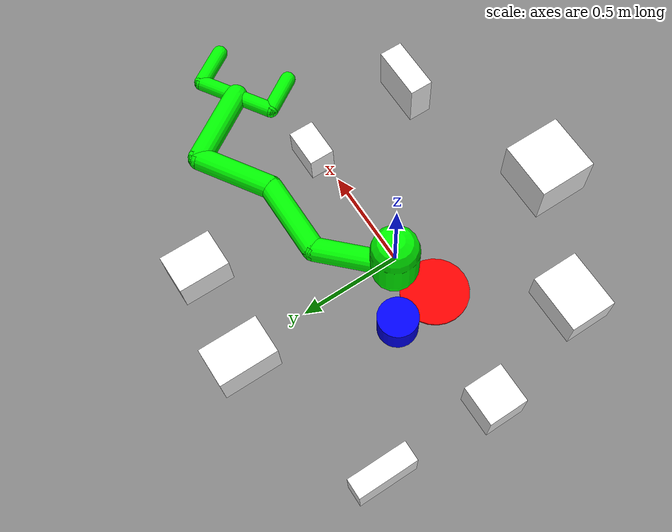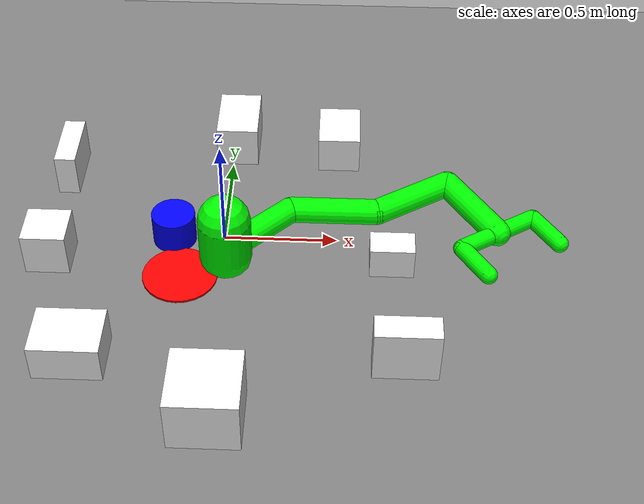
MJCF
<mujoco model="arm3d">
    <compiler inertiafromgeom="true" angle="radian" coordinate="local"/>
    <custom>
        <numeric name="frame_skip" data="5"/>
    </custom>
    <option timestep="0.01" gravity="0 0 0" iterations="20" integrator="Euler"/>

    <default>
        <joint armature='0.04' damping="1" limited="true"/>
        <geom friction=".8 .1 .1" density="300" margin="0.002" condim="1" contype="1" conaffinity="1"/>
    </default>

    <worldbody>
        <light diffuse=".5 .5 .5" pos="0 0 3" dir="0 0 -1"/>
        <geom type="plane" pos="0 0.5 -0.15" size="4 4 0.1" contype="1" conaffinity="1"/>

        <body name="palm" pos="0 0 0">
            <geom rgba="0. 1. 0. 1" type="capsule" fromto="0 0 -0.1 0 0 0.1" size="0.12"/>
            <body name="proximal_1" pos="0 0 -0.075" axisangle="0 0 1 0.785">
                <joint name="proximal_j_1" type="hinge" pos="0 0 0" axis="0 0 1" range="-2.5 2.5" damping="1.0"/>
                <geom rgba="0. 1. 0. 1" type="capsule" fromto="0 0 0 0.4 0 0" size="0.06" contype="1" conaffinity="1"/>
                <body name="distal_1" pos="0.4 0 0" axisangle="0 0 1 -0.785">
                    <joint name="distal_j_1" type="hinge" pos="0 0 0" axis="0 0 1" range="-2.3213 2.3" damping="1.0"/>
                    <geom rgba="0. 1. 0. 1" type="capsule" fromto="0 0 0 0.4 0 0" size="0.06" contype="1"
                          conaffinity="1"/>
                    <body name="distal_2" pos="0.4 0 0" axisangle="0 0 1 +0.57">
                        <joint name="distal_j_2" type="hinge" pos="0 0 0" axis="0 0 1" range="-2.3213 2.3"
                               damping="1.0"/>
                        <geom rgba="0. 1. 0. 1" type="capsule" fromto="0 0 0 0.4 0 0" size="0.06" contype="1"
                              conaffinity="1"/>
                        <body name="distal_3" pos="0.4 0 0" axisangle="0 0 1 -1.57">
                            <joint name="distal_j_3" type="hinge" pos="0 0 0" axis="0 0 1" range="-2.3213 2.3"
                                   damping="1.0"/>
                            <geom rgba="0. 1. 0. 1" type="capsule" fromto="0 0 0 0.4 0 0" size="0.06" contype="1"
                              conaffinity="1"/>
                            <body name="distal_4" pos="0.4 0 0">
                                <body name="tips_arm" pos="0 0 0">
                                    <geom name="tip_arml" type="sphere" pos="0.1 -0.2 0" size="0.01"/>
                                    <geom name="tip_armr" type="sphere" pos="0.1 0.2 0" size="0.01"/>
                                </body>
                                <geom rgba="0. 1. 0. 1" type="capsule" fromto="0 -0.2 0 0 0.2 0" size="0.04" contype="1"
                                      conaffinity="1"/>
                                <geom rgba="0. 1. 0. 1" type="capsule" fromto="0 -0.2 0 0.2 -0.2 0" size="0.04" contype="1"
                                      conaffinity="1"/>
                                <geom rgba="0. 1. 0. 1" type="capsule" fromto="0 0.2 0 0.2 0.2 0" size="0.04" contype="1"
                                      conaffinity="1"/>
                            </body>
                        </body>
                    </body>
                </body>
            </body>
        </body>

        <body name="object" pos="-0.25 0.15 -0.1">
            <geom rgba="0 0 1 1" type="cylinder" size=".1 0.1 0.1" density='0.5' contype="1" conaffinity="1"/>
            <joint name="obj_slidex" type="slide" pos="0.0025 0.0025 0.0025" axis="1 0 0" range="-10.3213 10.3"
                   damping="0.01" frictionloss="0.01"/>
            <joint name="obj_slidey" type="slide" pos="0.0025 0.0025 0.0025" axis="0 1 0" range="-10.3213 10.3"
                   damping="0.01" frictionloss="0.01"/>
        </body>
        <body name="object_box_1" pos="-0.8 -0.0 -0.1">
            <inertial pos="0 0 0" mass="1000000" diaginertia="1666.667 1666.667 1666.667"/>
            <geom rgba="1. 1. 1. 1" type="box" size="0.1 0.1 0.15" density='1000' contype="1" conaffinity="1"/>
        </body>

        <body name="object_box_2" pos="+0.75 +0.0 -0.1">
            <inertial pos="0 0 0" mass="1000000" diaginertia="1666.667 1666.667 1666.667"/>
            <geom rgba="1. 1. 1. 1" type="box" size="0.1 0.065 0.1" density='1000' contype="1" conaffinity="1"/>
        </body>
        <body name="object_box_3" pos="0 0.85 -0.1">
            <inertial pos="0 0 0" mass="1000000" diaginertia="1666.667 1666.667 1666.667"/>
            <geom rgba="1. 1. 1. 1" type="box" size="0.1 0.15 0.15" density='1000' contype="1" conaffinity="1"/>
        </body>

        <body name="object_box_4" pos="+0.0 -0.9 -0.1">
            <inertial pos="0 0 0" mass="1000000" diaginertia="1666.667 1666.667 1666.667"/>
            <geom rgba="1. 1. 1. 1" type="box" size="0.15 0.15 0.2" density='1000' contype="1" conaffinity="1"/>
        </body>

        <body name="object_box_5" pos="+0.5 +0.8 -0.1">
            <inertial pos="0 0 0" mass="1000000" diaginertia="1666.667 1666.667 1666.667"/>
            <geom rgba="1. 1. 1. 1" type="box" size="0.1 0.13 0.13" density='1000' contype="1" conaffinity="1"/>
        </body>

        <body name="object_box_6" pos="-0.6 -0.6  -0.1">
            <inertial pos="0 0 0" mass="1000000" diaginertia="1666.667 1666.667 1666.667"/>
            <geom rgba="1. 1. 1. 1" type="box" size="0.15 0.12 0.12" density='1000' contype="1" conaffinity="1"/>
        </body>

        <body name="object_box_7" pos="+0.8 -0.6  -0.1">
            <inertial pos="0 0 0" mass="1000000" diaginertia="1666.667 1666.667 1666.667"/>
            <geom rgba="1. 1. 1. 1" type="box" size="0.14 0.06 0.2" density='1000' contype="1" conaffinity="1"/>
        </body>

        <body name="object_box_8" pos="-0.8 +0.6  -0.1">
            <inertial pos="0 0 0" mass="1000000" diaginertia="1666.667 1666.667 1666.667"/>
            <geom rgba="1. 1. 1. 1" type="box" size="0.05 0.15 0.15" density='1000' contype="1" conaffinity="1"/>
        </body>

        <body name="goal" pos="-0.2 -.1 -0.145">
            <geom rgba="1. 0. 0. 1" type="cylinder" size="0.17 0.005 0.2" density='0.00001' contype="0"
                  conaffinity="0"/>
            <joint name="goal_slidex" type="slide" pos="0 0 0" axis="1 0 0" range="-10.3213 10.3" damping="0.5"/>
            <joint name="goal_slidey" type="slide" pos="0 0 0" axis="0 1 0" range="-10.3213 10.3" damping="0.5"/>
        </body>

    </worldbody>

    <actuator>
        <motor joint="proximal_j_1" ctrlrange="-3 3" ctrllimited="true"/>
        <motor joint="distal_j_1" ctrlrange="-3 3" ctrllimited="true"/>
        <motor joint="distal_j_2" ctrlrange="-3 3" ctrllimited="true"/>
        <motor joint="distal_j_3" ctrlrange="-3 3" ctrllimited="true"/>
    </actuator>
</mujoco>
